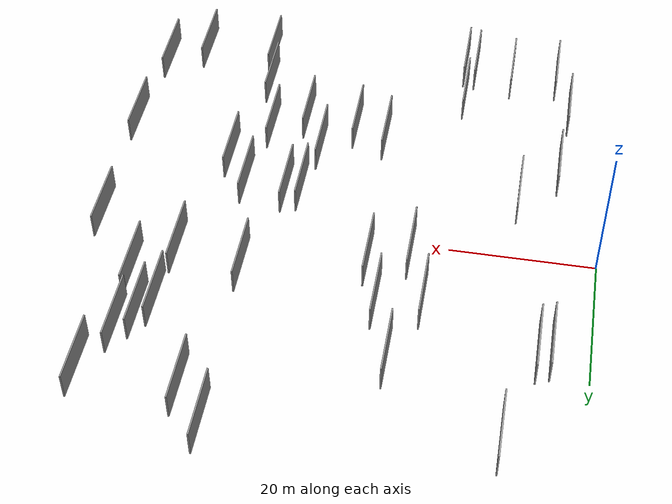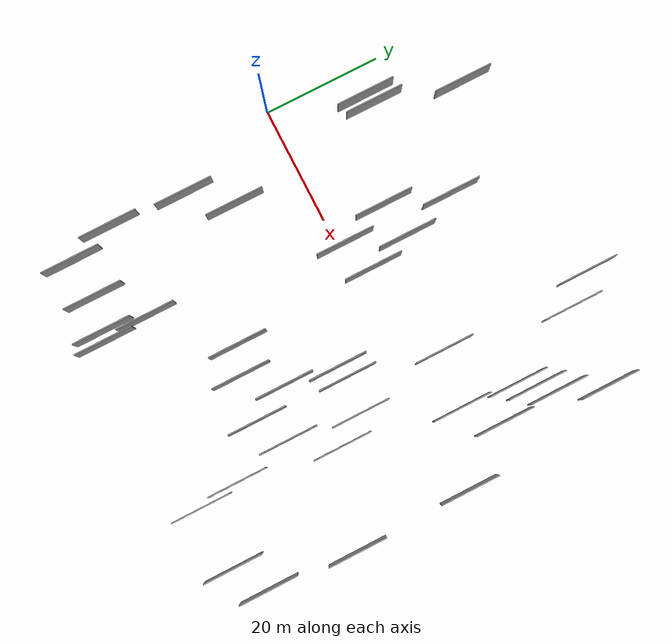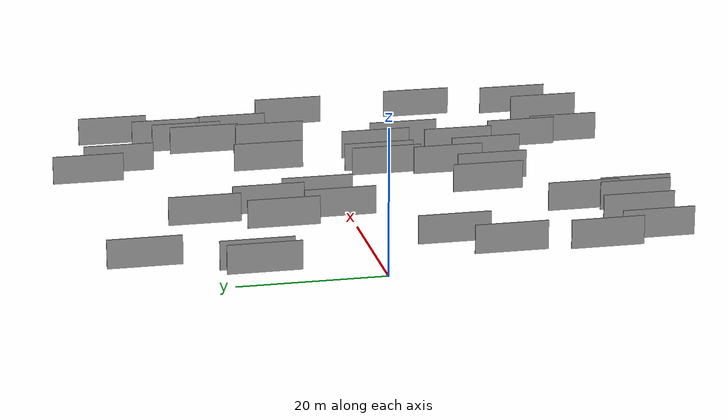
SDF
<sdf version="1.6">
 <world name="default">
  <scene>
   <sky><clouds><speed>12</speed></clouds></sky>
   <ambient>0.4 0.4 0.4 1</ambient>
   <background>0.7 0.7 0.7 1</background>
   <shadows>1</shadows>
  </scene>
  <gravity>0 0 -9.8066</gravity>
  <magnetic_field>6e-06 2.3e-05 -4.2e-05</magnetic_field>
  <physics default="0" name="default_physics" type="ode">
   <ode>
    <solver>
     <type>quick</type>
     <iters>10</iters>
     <sor>1.0</sor>
     <use_dynamic_moi_rescaling>0</use_dynamic_moi_rescaling>
    </solver>
    <constraints>
     <cfm>0</cfm>
     <erp>0.2</erp>
     <contact_max_correcting_vel>100</contact_max_correcting_vel>
     <contact_surface_layer>0.001</contact_surface_layer>
    </constraints>
   </ode>
   <max_step_size>0.004</max_step_size>
   <real_time_factor>1</real_time_factor>
   <real_time_update_rate>250</real_time_update_rate>
  </physics>
  <light name="sun" type="directional">
   <pose>0 0 10 0 0 0</pose>
   <diffuse>0.8 0.8 0.8 1</diffuse>
   <specular>0.2 0.2 0.2 1</specular>
   <attenuation>
    <range>1000</range>
    <constant>0.9</constant>
    <linear>0.01</linear>
    <quadratic>0.001</quadratic>
   </attenuation>
   <direction>-0.5 0.1 -0.9</direction>
  </light>
  <model name="grey_wall_1">
   <static>1</static>
   <pose>62.5590 -37.4555 0.0 0.000000 0.000000 1.570796</pose>
   <link name="link">
    <pose>0 0 2.00 0 0 0</pose>
    <collision name="collision"><geometry><box><size>10.00 0.2 4.00</size></box></geometry></collision>
    <visual name="visual">
     <cast_shadows>0</cast_shadows>
     <geometry><box><size>10.00 0.2 4.00</size></box></geometry>
     <material>
      <script>
       <uri>model://grey_wall/materials/scripts</uri>
       <uri>model://grey_wall/materials/textures</uri>
       <name>vrc/grey_wall</name>
      </script>
     </material>
    </visual>
   </link>
  </model>
  <model name="grey_wall_2">
   <static>1</static>
   <pose>50.7144 28.4899 0.0 0.000000 0.000000 1.570796</pose>
   <link name="link">
    <pose>0 0 2.00 0 0 0</pose>
    <collision name="collision"><geometry><box><size>10.00 0.2 4.00</size></box></geometry></collision>
    <visual name="visual">
     <cast_shadows>0</cast_shadows>
     <geometry><box><size>10.00 0.2 4.00</size></box></geometry>
     <material>
      <script>
       <uri>model://grey_wall/materials/scripts</uri>
       <uri>model://grey_wall/materials/textures</uri>
       <name>vrc/grey_wall</name>
      </script>
     </material>
    </visual>
   </link>
  </model>
  <model name="grey_wall_3">
   <static>1</static>
   <pose>22.3722 9.6386 0.0 0.000000 0.000000 1.570796</pose>
   <link name="link">
    <pose>0 0 2.00 0 0 0</pose>
    <collision name="collision"><geometry><box><size>10.00 0.2 4.00</size></box></geometry></collision>
    <visual name="visual">
     <cast_shadows>0</cast_shadows>
     <geometry><box><size>10.00 0.2 4.00</size></box></geometry>
     <material>
      <script>
       <uri>model://grey_wall/materials/scripts</uri>
       <uri>model://grey_wall/materials/textures</uri>
       <name>vrc/grey_wall</name>
      </script>
     </material>
    </visual>
   </link>
  </model>
  <model name="grey_wall_4">
   <static>1</static>
   <pose>68.6791 0.6050 0.0 0.000000 0.000000 1.570796</pose>
   <link name="link">
    <pose>0 0 2.00 0 0 0</pose>
    <collision name="collision"><geometry><box><size>10.00 0.2 4.00</size></box></geometry></collision>
    <visual name="visual">
     <cast_shadows>0</cast_shadows>
     <geometry><box><size>10.00 0.2 4.00</size></box></geometry>
     <material>
      <script>
       <uri>model://grey_wall/materials/scripts</uri>
       <uri>model://grey_wall/materials/textures</uri>
       <name>vrc/grey_wall</name>
      </script>
     </material>
    </visual>
   </link>
  </model>
  <model name="grey_wall_5">
   <static>1</static>
   <pose>57.3761 15.1290 0.0 0.000000 0.000000 1.570796</pose>
   <link name="link">
    <pose>0 0 2.00 0 0 0</pose>
    <collision name="collision"><geometry><box><size>10.00 0.2 4.00</size></box></geometry></collision>
    <visual name="visual">
     <cast_shadows>0</cast_shadows>
     <geometry><box><size>10.00 0.2 4.00</size></box></geometry>
     <material>
      <script>
       <uri>model://grey_wall/materials/scripts</uri>
       <uri>model://grey_wall/materials/textures</uri>
       <name>vrc/grey_wall</name>
      </script>
     </material>
    </visual>
   </link>
  </model>
  <model name="grey_wall_6">
   <static>1</static>
   <pose>5.4550 -30.9856 0.0 0.000000 0.000000 1.570796</pose>
   <link name="link">
    <pose>0 0 2.00 0 0 0</pose>
    <collision name="collision"><geometry><box><size>10.00 0.2 4.00</size></box></geometry></collision>
    <visual name="visual">
     <cast_shadows>0</cast_shadows>
     <geometry><box><size>10.00 0.2 4.00</size></box></geometry>
     <material>
      <script>
       <uri>model://grey_wall/materials/scripts</uri>
       <uri>model://grey_wall/materials/textures</uri>
       <name>vrc/grey_wall</name>
      </script>
     </material>
    </visual>
   </link>
  </model>
  <model name="grey_wall_7">
   <static>1</static>
   <pose>69.1262 -19.2305 0.0 0.000000 0.000000 1.570796</pose>
   <link name="link">
    <pose>0 0 2.00 0 0 0</pose>
    <collision name="collision"><geometry><box><size>10.00 0.2 4.00</size></box></geometry></collision>
    <visual name="visual">
     <cast_shadows>0</cast_shadows>
     <geometry><box><size>10.00 0.2 4.00</size></box></geometry>
     <material>
      <script>
       <uri>model://grey_wall/materials/scripts</uri>
       <uri>model://grey_wall/materials/textures</uri>
       <name>vrc/grey_wall</name>
      </script>
     </material>
    </visual>
   </link>
  </model>
  <model name="grey_wall_8">
   <static>1</static>
   <pose>7.8083 -38.7250 0.0 0.000000 0.000000 1.570796</pose>
   <link name="link">
    <pose>0 0 2.00 0 0 0</pose>
    <collision name="collision"><geometry><box><size>10.00 0.2 4.00</size></box></geometry></collision>
    <visual name="visual">
     <cast_shadows>0</cast_shadows>
     <geometry><box><size>10.00 0.2 4.00</size></box></geometry>
     <material>
      <script>
       <uri>model://grey_wall/materials/scripts</uri>
       <uri>model://grey_wall/materials/textures</uri>
       <name>vrc/grey_wall</name>
      </script>
     </material>
    </visual>
   </link>
  </model>
  <model name="grey_wall_9">
   <static>1</static>
   <pose>36.4498 -22.9727 0.0 0.000000 0.000000 1.570796</pose>
   <link name="link">
    <pose>0 0 2.00 0 0 0</pose>
    <collision name="collision"><geometry><box><size>10.00 0.2 4.00</size></box></geometry></collision>
    <visual name="visual">
     <cast_shadows>0</cast_shadows>
     <geometry><box><size>10.00 0.2 4.00</size></box></geometry>
     <material>
      <script>
       <uri>model://grey_wall/materials/scripts</uri>
       <uri>model://grey_wall/materials/textures</uri>
       <name>vrc/grey_wall</name>
      </script>
     </material>
    </visual>
   </link>
  </model>
  <model name="grey_wall_10">
   <static>1</static>
   <pose>56.7825 5.5592 0.0 0.000000 0.000000 1.570796</pose>
   <link name="link">
    <pose>0 0 2.00 0 0 0</pose>
    <collision name="collision"><geometry><box><size>10.00 0.2 4.00</size></box></geometry></collision>
    <visual name="visual">
     <cast_shadows>0</cast_shadows>
     <geometry><box><size>10.00 0.2 4.00</size></box></geometry>
     <material>
      <script>
       <uri>model://grey_wall/materials/scripts</uri>
       <uri>model://grey_wall/materials/textures</uri>
       <name>vrc/grey_wall</name>
      </script>
     </material>
    </visual>
   </link>
  </model>
  <model name="grey_wall_11">
   <static>1</static>
   <pose>25.0976 1.2938 0.0 0.000000 0.000000 1.570796</pose>
   <link name="link">
    <pose>0 0 2.00 0 0 0</pose>
    <collision name="collision"><geometry><box><size>10.00 0.2 4.00</size></box></geometry></collision>
    <visual name="visual">
     <cast_shadows>0</cast_shadows>
     <geometry><box><size>10.00 0.2 4.00</size></box></geometry>
     <material>
      <script>
       <uri>model://grey_wall/materials/scripts</uri>
       <uri>model://grey_wall/materials/textures</uri>
       <name>vrc/grey_wall</name>
      </script>
     </material>
    </visual>
   </link>
  </model>
  <model name="grey_wall_12">
   <static>1</static>
   <pose>30.6973 3.4397 0.0 0.000000 0.000000 1.570796</pose>
   <link name="link">
    <pose>0 0 2.00 0 0 0</pose>
    <collision name="collision"><geometry><box><size>10.00 0.2 4.00</size></box></geometry></collision>
    <visual name="visual">
     <cast_shadows>0</cast_shadows>
     <geometry><box><size>10.00 0.2 4.00</size></box></geometry>
     <material>
      <script>
       <uri>model://grey_wall/materials/scripts</uri>
       <uri>model://grey_wall/materials/textures</uri>
       <name>vrc/grey_wall</name>
      </script>
     </material>
    </visual>
   </link>
  </model>
  <model name="grey_wall_13">
   <static>1</static>
   <pose>67.9543 -34.0128 0.0 0.000000 0.000000 1.570796</pose>
   <link name="link">
    <pose>0 0 2.00 0 0 0</pose>
    <collision name="collision"><geometry><box><size>10.00 0.2 4.00</size></box></geometry></collision>
    <visual name="visual">
     <cast_shadows>0</cast_shadows>
     <geometry><box><size>10.00 0.2 4.00</size></box></geometry>
     <material>
      <script>
       <uri>model://grey_wall/materials/scripts</uri>
       <uri>model://grey_wall/materials/textures</uri>
       <name>vrc/grey_wall</name>
      </script>
     </material>
    </visual>
   </link>
  </model>
  <model name="grey_wall_14">
   <static>1</static>
   <pose>6.1624 -17.9956 0.0 0.000000 0.000000 1.570796</pose>
   <link name="link">
    <pose>0 0 2.00 0 0 0</pose>
    <collision name="collision"><geometry><box><size>10.00 0.2 4.00</size></box></geometry></collision>
    <visual name="visual">
     <cast_shadows>0</cast_shadows>
     <geometry><box><size>10.00 0.2 4.00</size></box></geometry>
     <material>
      <script>
       <uri>model://grey_wall/materials/scripts</uri>
       <uri>model://grey_wall/materials/textures</uri>
       <name>vrc/grey_wall</name>
      </script>
     </material>
    </visual>
   </link>
  </model>
  <model name="grey_wall_15">
   <static>1</static>
   <pose>44.3474 -8.2246 0.0 0.000000 0.000000 1.570796</pose>
   <link name="link">
    <pose>0 0 2.00 0 0 0</pose>
    <collision name="collision"><geometry><box><size>10.00 0.2 4.00</size></box></geometry></collision>
    <visual name="visual">
     <cast_shadows>0</cast_shadows>
     <geometry><box><size>10.00 0.2 4.00</size></box></geometry>
     <material>
      <script>
       <uri>model://grey_wall/materials/scripts</uri>
       <uri>model://grey_wall/materials/textures</uri>
       <name>vrc/grey_wall</name>
      </script>
     </material>
    </visual>
   </link>
  </model>
  <model name="grey_wall_16">
   <static>1</static>
   <pose>50.3588 -9.0022 0.0 0.000000 0.000000 1.570796</pose>
   <link name="link">
    <pose>0 0 2.00 0 0 0</pose>
    <collision name="collision"><geometry><box><size>10.00 0.2 4.00</size></box></geometry></collision>
    <visual name="visual">
     <cast_shadows>0</cast_shadows>
     <geometry><box><size>10.00 0.2 4.00</size></box></geometry>
     <material>
      <script>
       <uri>model://grey_wall/materials/scripts</uri>
       <uri>model://grey_wall/materials/textures</uri>
       <name>vrc/grey_wall</name>
      </script>
     </material>
    </visual>
   </link>
  </model>
  <model name="grey_wall_17">
   <static>1</static>
   <pose>11.4152 -11.5198 0.0 0.000000 0.000000 1.570796</pose>
   <link name="link">
    <pose>0 0 2.00 0 0 0</pose>
    <collision name="collision"><geometry><box><size>10.00 0.2 4.00</size></box></geometry></collision>
    <visual name="visual">
     <cast_shadows>0</cast_shadows>
     <geometry><box><size>10.00 0.2 4.00</size></box></geometry>
     <material>
      <script>
       <uri>model://grey_wall/materials/scripts</uri>
       <uri>model://grey_wall/materials/textures</uri>
       <name>vrc/grey_wall</name>
      </script>
     </material>
    </visual>
   </link>
  </model>
  <model name="grey_wall_18">
   <static>1</static>
   <pose>59.1475 17.5195 0.0 0.000000 0.000000 1.570796</pose>
   <link name="link">
    <pose>0 0 2.00 0 0 0</pose>
    <collision name="collision"><geometry><box><size>10.00 0.2 4.00</size></box></geometry></collision>
    <visual name="visual">
     <cast_shadows>0</cast_shadows>
     <geometry><box><size>10.00 0.2 4.00</size></box></geometry>
     <material>
      <script>
       <uri>model://grey_wall/materials/scripts</uri>
       <uri>model://grey_wall/materials/textures</uri>
       <name>vrc/grey_wall</name>
      </script>
     </material>
    </visual>
   </link>
  </model>
  <model name="grey_wall_19">
   <static>1</static>
   <pose>40.9653 -17.6254 0.0 0.000000 0.000000 1.570796</pose>
   <link name="link">
    <pose>0 0 2.00 0 0 0</pose>
    <collision name="collision"><geometry><box><size>10.00 0.2 4.00</size></box></geometry></collision>
    <visual name="visual">
     <cast_shadows>0</cast_shadows>
     <geometry><box><size>10.00 0.2 4.00</size></box></geometry>
     <material>
      <script>
       <uri>model://grey_wall/materials/scripts</uri>
       <uri>model://grey_wall/materials/textures</uri>
       <name>vrc/grey_wall</name>
      </script>
     </material>
    </visual>
   </link>
  </model>
  <model name="grey_wall_20">
   <static>1</static>
   <pose>42.2173 -8.8678 0.0 0.000000 0.000000 1.570796</pose>
   <link name="link">
    <pose>0 0 2.00 0 0 0</pose>
    <collision name="collision"><geometry><box><size>10.00 0.2 4.00</size></box></geometry></collision>
    <visual name="visual">
     <cast_shadows>0</cast_shadows>
     <geometry><box><size>10.00 0.2 4.00</size></box></geometry>
     <material>
      <script>
       <uri>model://grey_wall/materials/scripts</uri>
       <uri>model://grey_wall/materials/textures</uri>
       <name>vrc/grey_wall</name>
      </script>
     </material>
    </visual>
   </link>
  </model>
  <model name="grey_wall_21">
   <static>1</static>
   <pose>14.6053 -38.0603 0.0 0.000000 0.000000 1.570796</pose>
   <link name="link">
    <pose>0 0 2.00 0 0 0</pose>
    <collision name="collision"><geometry><box><size>10.00 0.2 4.00</size></box></geometry></collision>
    <visual name="visual">
     <cast_shadows>0</cast_shadows>
     <geometry><box><size>10.00 0.2 4.00</size></box></geometry>
     <material>
      <script>
       <uri>model://grey_wall/materials/scripts</uri>
       <uri>model://grey_wall/materials/textures</uri>
       <name>vrc/grey_wall</name>
      </script>
     </material>
    </visual>
   </link>
  </model>
  <model name="grey_wall_22">
   <static>1</static>
   <pose>64.2783 27.6987 0.0 0.000000 0.000000 1.570796</pose>
   <link name="link">
    <pose>0 0 2.00 0 0 0</pose>
    <collision name="collision"><geometry><box><size>10.00 0.2 4.00</size></box></geometry></collision>
    <visual name="visual">
     <cast_shadows>0</cast_shadows>
     <geometry><box><size>10.00 0.2 4.00</size></box></geometry>
     <material>
      <script>
       <uri>model://grey_wall/materials/scripts</uri>
       <uri>model://grey_wall/materials/textures</uri>
       <name>vrc/grey_wall</name>
      </script>
     </material>
    </visual>
   </link>
  </model>
  <model name="grey_wall_23">
   <static>1</static>
   <pose>61.3411 20.1874 0.0 0.000000 0.000000 1.570796</pose>
   <link name="link">
    <pose>0 0 2.00 0 0 0</pose>
    <collision name="collision"><geometry><box><size>10.00 0.2 4.00</size></box></geometry></collision>
    <visual name="visual">
     <cast_shadows>0</cast_shadows>
     <geometry><box><size>10.00 0.2 4.00</size></box></geometry>
     <material>
      <script>
       <uri>model://grey_wall/materials/scripts</uri>
       <uri>model://grey_wall/materials/textures</uri>
       <name>vrc/grey_wall</name>
      </script>
     </material>
    </visual>
   </link>
  </model>
  <model name="grey_wall_24">
   <static>1</static>
   <pose>44.0093 -23.9181 0.0 0.000000 0.000000 1.570796</pose>
   <link name="link">
    <pose>0 0 2.00 0 0 0</pose>
    <collision name="collision"><geometry><box><size>10.00 0.2 4.00</size></box></geometry></collision>
    <visual name="visual">
     <cast_shadows>0</cast_shadows>
     <geometry><box><size>10.00 0.2 4.00</size></box></geometry>
     <material>
      <script>
       <uri>model://grey_wall/materials/scripts</uri>
       <uri>model://grey_wall/materials/textures</uri>
       <name>vrc/grey_wall</name>
      </script>
     </material>
    </visual>
   </link>
  </model>
  <model name="grey_wall_25">
   <static>1</static>
   <pose>20.2251 -39.2330 0.0 0.000000 0.000000 1.570796</pose>
   <link name="link">
    <pose>0 0 2.00 0 0 0</pose>
    <collision name="collision"><geometry><box><size>10.00 0.2 4.00</size></box></geometry></collision>
    <visual name="visual">
     <cast_shadows>0</cast_shadows>
     <geometry><box><size>10.00 0.2 4.00</size></box></geometry>
     <material>
      <script>
       <uri>model://grey_wall/materials/scripts</uri>
       <uri>model://grey_wall/materials/textures</uri>
       <name>vrc/grey_wall</name>
      </script>
     </material>
    </visual>
   </link>
  </model>
  <model name="grey_wall_26">
   <static>1</static>
   <pose>25.7327 19.9511 0.0 0.000000 0.000000 1.570796</pose>
   <link name="link">
    <pose>0 0 2.00 0 0 0</pose>
    <collision name="collision"><geometry><box><size>10.00 0.2 4.00</size></box></geometry></collision>
    <visual name="visual">
     <cast_shadows>0</cast_shadows>
     <geometry><box><size>10.00 0.2 4.00</size></box></geometry>
     <material>
      <script>
       <uri>model://grey_wall/materials/scripts</uri>
       <uri>model://grey_wall/materials/textures</uri>
       <name>vrc/grey_wall</name>
      </script>
     </material>
    </visual>
   </link>
  </model>
  <model name="grey_wall_27">
   <static>1</static>
   <pose>21.8670 -39.6916 0.0 0.000000 0.000000 1.570796</pose>
   <link name="link">
    <pose>0 0 2.00 0 0 0</pose>
    <collision name="collision"><geometry><box><size>10.00 0.2 4.00</size></box></geometry></collision>
    <visual name="visual">
     <cast_shadows>0</cast_shadows>
     <geometry><box><size>10.00 0.2 4.00</size></box></geometry>
     <material>
      <script>
       <uri>model://grey_wall/materials/scripts</uri>
       <uri>model://grey_wall/materials/textures</uri>
       <name>vrc/grey_wall</name>
      </script>
     </material>
    </visual>
   </link>
  </model>
  <model name="grey_wall_28">
   <static>1</static>
   <pose>5.0430 15.3162 0.0 0.000000 0.000000 1.570796</pose>
   <link name="link">
    <pose>0 0 2.00 0 0 0</pose>
    <collision name="collision"><geometry><box><size>10.00 0.2 4.00</size></box></geometry></collision>
    <visual name="visual">
     <cast_shadows>0</cast_shadows>
     <geometry><box><size>10.00 0.2 4.00</size></box></geometry>
     <material>
      <script>
       <uri>model://grey_wall/materials/scripts</uri>
       <uri>model://grey_wall/materials/textures</uri>
       <name>vrc/grey_wall</name>
      </script>
     </material>
    </visual>
   </link>
  </model>
  <model name="grey_wall_29">
   <static>1</static>
   <pose>21.2377 -32.1067 0.0 0.000000 0.000000 1.570796</pose>
   <link name="link">
    <pose>0 0 2.00 0 0 0</pose>
    <collision name="collision"><geometry><box><size>10.00 0.2 4.00</size></box></geometry></collision>
    <visual name="visual">
     <cast_shadows>0</cast_shadows>
     <geometry><box><size>10.00 0.2 4.00</size></box></geometry>
     <material>
      <script>
       <uri>model://grey_wall/materials/scripts</uri>
       <uri>model://grey_wall/materials/textures</uri>
       <name>vrc/grey_wall</name>
      </script>
     </material>
    </visual>
   </link>
  </model>
  <model name="grey_wall_30">
   <static>1</static>
   <pose>28.5584 10.6676 0.0 0.000000 0.000000 1.570796</pose>
   <link name="link">
    <pose>0 0 2.00 0 0 0</pose>
    <collision name="collision"><geometry><box><size>10.00 0.2 4.00</size></box></geometry></collision>
    <visual name="visual">
     <cast_shadows>0</cast_shadows>
     <geometry><box><size>10.00 0.2 4.00</size></box></geometry>
     <material>
      <script>
       <uri>model://grey_wall/materials/scripts</uri>
       <uri>model://grey_wall/materials/textures</uri>
       <name>vrc/grey_wall</name>
      </script>
     </material>
    </visual>
   </link>
  </model>
  <model name="grey_wall_31">
   <static>1</static>
   <pose>46.7606 33.3332 0.0 0.000000 0.000000 1.570796</pose>
   <link name="link">
    <pose>0 0 2.00 0 0 0</pose>
    <collision name="collision"><geometry><box><size>10.00 0.2 4.00</size></box></geometry></collision>
    <visual name="visual">
     <cast_shadows>0</cast_shadows>
     <geometry><box><size>10.00 0.2 4.00</size></box></geometry>
     <material>
      <script>
       <uri>model://grey_wall/materials/scripts</uri>
       <uri>model://grey_wall/materials/textures</uri>
       <name>vrc/grey_wall</name>
      </script>
     </material>
    </visual>
   </link>
  </model>
  <model name="grey_wall_32">
   <static>1</static>
   <pose>51.1187 -30.9648 0.0 0.000000 0.000000 1.570796</pose>
   <link name="link">
    <pose>0 0 2.00 0 0 0</pose>
    <collision name="collision"><geometry><box><size>10.00 0.2 4.00</size></box></geometry></collision>
    <visual name="visual">
     <cast_shadows>0</cast_shadows>
     <geometry><box><size>10.00 0.2 4.00</size></box></geometry>
     <material>
      <script>
       <uri>model://grey_wall/materials/scripts</uri>
       <uri>model://grey_wall/materials/textures</uri>
       <name>vrc/grey_wall</name>
      </script>
     </material>
    </visual>
   </link>
  </model>
  <model name="grey_wall_33">
   <static>1</static>
   <pose>48.8967 -20.9733 0.0 0.000000 0.000000 1.570796</pose>
   <link name="link">
    <pose>0 0 2.00 0 0 0</pose>
    <collision name="collision"><geometry><box><size>10.00 0.2 4.00</size></box></geometry></collision>
    <visual name="visual">
     <cast_shadows>0</cast_shadows>
     <geometry><box><size>10.00 0.2 4.00</size></box></geometry>
     <material>
      <script>
       <uri>model://grey_wall/materials/scripts</uri>
       <uri>model://grey_wall/materials/textures</uri>
       <name>vrc/grey_wall</name>
      </script>
     </material>
    </visual>
   </link>
  </model>
  <model name="grey_wall_34">
   <static>1</static>
   <pose>61.8402 10.3669 0.0 0.000000 0.000000 1.570796</pose>
   <link name="link">
    <pose>0 0 2.00 0 0 0</pose>
    <collision name="collision"><geometry><box><size>10.00 0.2 4.00</size></box></geometry></collision>
    <visual name="visual">
     <cast_shadows>0</cast_shadows>
     <geometry><box><size>10.00 0.2 4.00</size></box></geometry>
     <material>
      <script>
       <uri>model://grey_wall/materials/scripts</uri>
       <uri>model://grey_wall/materials/textures</uri>
       <name>vrc/grey_wall</name>
      </script>
     </material>
    </visual>
   </link>
  </model>
  <model name="grey_wall_35">
   <static>1</static>
   <pose>6.7884 15.9722 0.0 0.000000 0.000000 1.570796</pose>
   <link name="link">
    <pose>0 0 2.00 0 0 0</pose>
    <collision name="collision"><geometry><box><size>10.00 0.2 4.00</size></box></geometry></collision>
    <visual name="visual">
     <cast_shadows>0</cast_shadows>
     <geometry><box><size>10.00 0.2 4.00</size></box></geometry>
     <material>
      <script>
       <uri>model://grey_wall/materials/scripts</uri>
       <uri>model://grey_wall/materials/textures</uri>
       <name>vrc/grey_wall</name>
      </script>
     </material>
    </visual>
   </link>
  </model>
  <model name="grey_wall_36">
   <static>1</static>
   <pose>31.8439 -21.2312 0.0 0.000000 0.000000 1.570796</pose>
   <link name="link">
    <pose>0 0 2.00 0 0 0</pose>
    <collision name="collision"><geometry><box><size>10.00 0.2 4.00</size></box></geometry></collision>
    <visual name="visual">
     <cast_shadows>0</cast_shadows>
     <geometry><box><size>10.00 0.2 4.00</size></box></geometry>
     <material>
      <script>
       <uri>model://grey_wall/materials/scripts</uri>
       <uri>model://grey_wall/materials/textures</uri>
       <name>vrc/grey_wall</name>
      </script>
     </material>
    </visual>
   </link>
  </model>
  <model name="grey_wall_37">
   <static>1</static>
   <pose>47.4694 7.3108 0.0 0.000000 0.000000 1.570796</pose>
   <link name="link">
    <pose>0 0 2.00 0 0 0</pose>
    <collision name="collision"><geometry><box><size>10.00 0.2 4.00</size></box></geometry></collision>
    <visual name="visual">
     <cast_shadows>0</cast_shadows>
     <geometry><box><size>10.00 0.2 4.00</size></box></geometry>
     <material>
      <script>
       <uri>model://grey_wall/materials/scripts</uri>
       <uri>model://grey_wall/materials/textures</uri>
       <name>vrc/grey_wall</name>
      </script>
     </material>
    </visual>
   </link>
  </model>
  <model name="grey_wall_38">
   <static>1</static>
   <pose>53.6224 -13.8418 0.0 0.000000 0.000000 1.570796</pose>
   <link name="link">
    <pose>0 0 2.00 0 0 0</pose>
    <collision name="collision"><geometry><box><size>10.00 0.2 4.00</size></box></geometry></collision>
    <visual name="visual">
     <cast_shadows>0</cast_shadows>
     <geometry><box><size>10.00 0.2 4.00</size></box></geometry>
     <material>
      <script>
       <uri>model://grey_wall/materials/scripts</uri>
       <uri>model://grey_wall/materials/textures</uri>
       <name>vrc/grey_wall</name>
      </script>
     </material>
    </visual>
   </link>
  </model>
  <model name="grey_wall_39">
   <static>1</static>
   <pose>52.0772 -37.6499 0.0 0.000000 0.000000 1.570796</pose>
   <link name="link">
    <pose>0 0 2.00 0 0 0</pose>
    <collision name="collision"><geometry><box><size>10.00 0.2 4.00</size></box></geometry></collision>
    <visual name="visual">
     <cast_shadows>0</cast_shadows>
     <geometry><box><size>10.00 0.2 4.00</size></box></geometry>
     <material>
      <script>
       <uri>model://grey_wall/materials/scripts</uri>
       <uri>model://grey_wall/materials/textures</uri>
       <name>vrc/grey_wall</name>
      </script>
     </material>
    </visual>
   </link>
  </model>
  <model name="grey_wall_40">
   <static>1</static>
   <pose>10.2749 30.2662 0.0 0.000000 0.000000 1.570796</pose>
   <link name="link">
    <pose>0 0 2.00 0 0 0</pose>
    <collision name="collision"><geometry><box><size>10.00 0.2 4.00</size></box></geometry></collision>
    <visual name="visual">
     <cast_shadows>0</cast_shadows>
     <geometry><box><size>10.00 0.2 4.00</size></box></geometry>
     <material>
      <script>
       <uri>model://grey_wall/materials/scripts</uri>
       <uri>model://grey_wall/materials/textures</uri>
       <name>vrc/grey_wall</name>
      </script>
     </material>
    </visual>
   </link>
  </model>
 </world>
</sdf>
